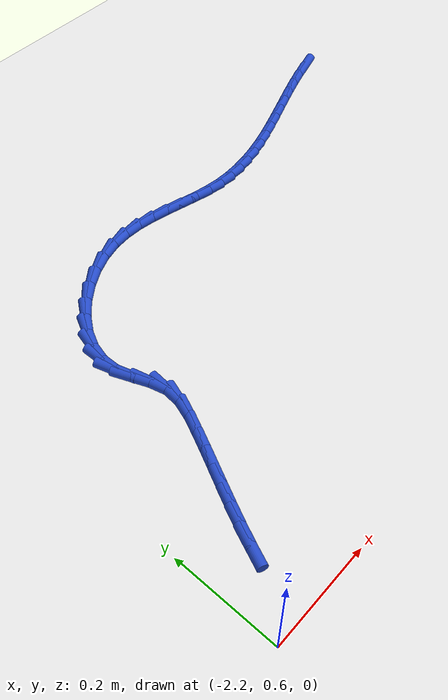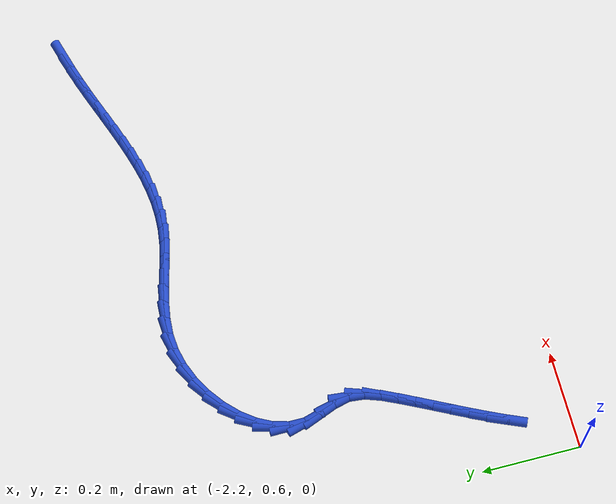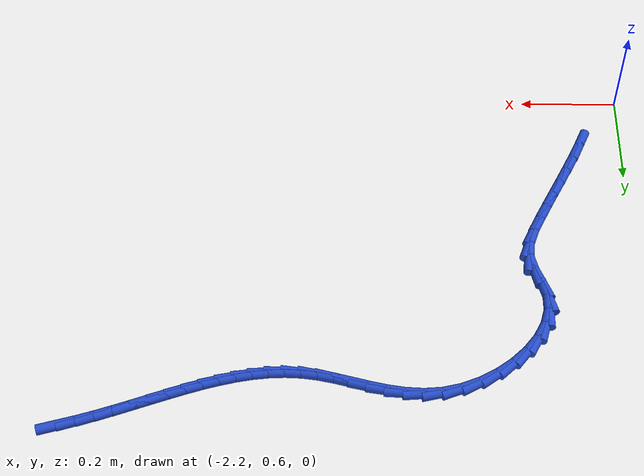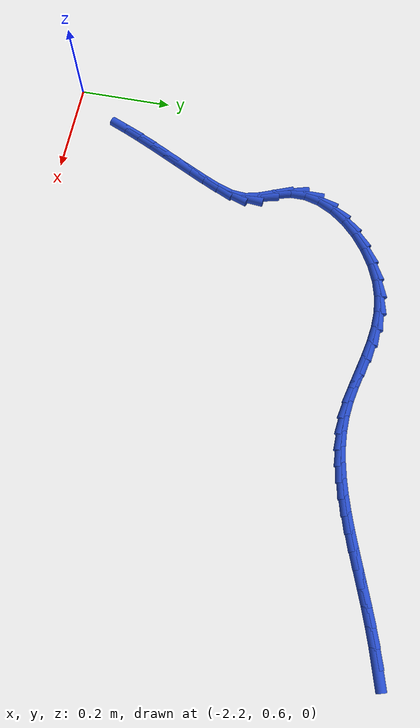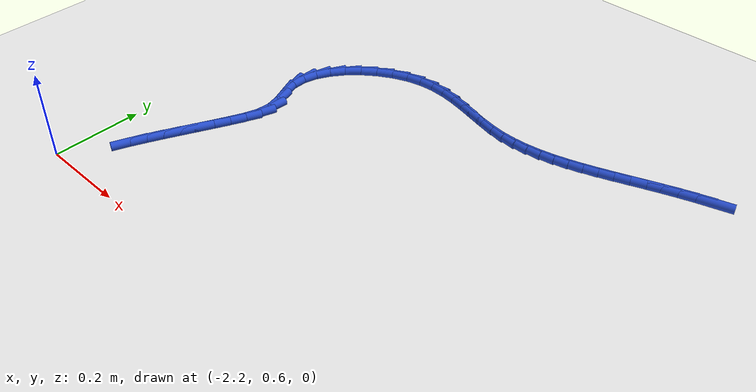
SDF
<sdf version="1.6">
 <world name="default">
  <model name="ground_plane">
   <static>1</static>
   <link name="link">
    <collision name="collision">
     <geometry><plane><normal>0 0 1</normal><size>100 100</size></plane></geometry>
     <surface><friction><ode><mu>100</mu><mu2>50</mu2></ode></friction></surface>
    </collision>
    <visual name="visual">
     <cast_shadows>0</cast_shadows>
     <geometry><plane><normal>0 0 1</normal><size>100 100</size></plane></geometry>
     <material>
      <script><uri>file://media/materials/scripts/gazebo.material</uri><name>Gazebo/WhiteGlow</name></script>
     </material>
    </visual>
   </link>
  </model>
  <model name="line">
   <link name="link_68">
    <pose>-1.1118902703118472 1.403961503204858 0.01 0 1.57 0.28492077158834617</pose>
    <collision name="collision">
     <geometry><cylinder><radius>0.01</radius><length>0.08</length></cylinder></geometry>
    </collision>
    <visual name="visual">
     <material>
      <script><name>Gazebo/Blue</name><uri>file://media/materials/scripts/gazebo.material</uri></script>
     </material>
     <geometry><cylinder><radius>0.01</radius><length>0.08</length></cylinder></geometry>
    </visual>
   </link>
   <link name="link_69">
    <pose>-1.145834962680922 1.394019456650552 0.01 0 1.57 0.3160324577656235</pose>
    <collision name="collision">
     <geometry><cylinder><radius>0.01</radius><length>0.08</length></cylinder></geometry>
    </collision>
    <visual name="visual">
     <material>
      <script><name>Gazebo/Blue</name><uri>file://media/materials/scripts/gazebo.material</uri></script>
     </material>
     <geometry><cylinder><radius>0.01</radius><length>0.08</length></cylinder></geometry>
    </visual>
   </link>
   <link name="link_70">
    <pose>-1.1790220390081132 1.3831675511592807 0.01 0 1.57 0.3391553161864147</pose>
    <collision name="collision">
     <geometry><cylinder><radius>0.01</radius><length>0.08</length></cylinder></geometry>
    </collision>
    <visual name="visual">
     <material>
      <script><name>Gazebo/Blue</name><uri>file://media/materials/scripts/gazebo.material</uri></script>
     </material>
     <geometry><cylinder><radius>0.01</radius><length>0.08</length></cylinder></geometry>
    </visual>
   </link>
   <link name="link_71">
    <pose>-1.2115365070456976 1.3716968765863278 0.01 0 1.57 0.3539779828538775</pose>
    <collision name="collision">
     <geometry><cylinder><radius>0.01</radius><length>0.08</length></cylinder></geometry>
    </collision>
    <visual name="visual">
     <material>
      <script><name>Gazebo/Blue</name><uri>file://media/materials/scripts/gazebo.material</uri></script>
     </material>
     <geometry><cylinder><radius>0.01</radius><length>0.08</length></cylinder></geometry>
    </visual>
   </link>
   <link name="link_72">
    <pose>-1.2434633745459542 1.359898522786976 0.01 0 1.57 0.360188315180611</pose>
    <collision name="collision">
     <geometry><cylinder><radius>0.01</radius><length>0.08</length></cylinder></geometry>
    </collision>
    <visual name="visual">
     <material>
      <script><name>Gazebo/Blue</name><uri>file://media/materials/scripts/gazebo.material</uri></script>
     </material>
     <geometry><cylinder><radius>0.01</radius><length>0.08</length></cylinder></geometry>
    </visual>
   </link>
   <link name="link_73">
    <pose>-1.2748876492611605 1.348063579616509 0.01 0 1.57 0.3574392197849283</pose>
    <collision name="collision">
     <geometry><cylinder><radius>0.01</radius><length>0.08</length></cylinder></geometry>
    </collision>
    <visual name="visual">
     <material>
      <script><name>Gazebo/Blue</name><uri>file://media/materials/scripts/gazebo.material</uri></script>
     </material>
     <geometry><cylinder><radius>0.01</radius><length>0.08</length></cylinder></geometry>
    </visual>
   </link>
   <link name="link_74">
    <pose>-1.3058943389435946 1.3364831369302088 0.01 0 1.57 0.3453296390945617</pose>
    <collision name="collision">
     <geometry><cylinder><radius>0.01</radius><length>0.08</length></cylinder></geometry>
    </collision>
    <visual name="visual">
     <material>
      <script><name>Gazebo/Blue</name><uri>file://media/materials/scripts/gazebo.material</uri></script>
     </material>
     <geometry><cylinder><radius>0.01</radius><length>0.08</length></cylinder></geometry>
    </visual>
   </link>
   <link name="link_75">
    <pose>-1.3365684513455347 1.3254482845833586 0.01 0 1.57 0.32340582705658283</pose>
    <collision name="collision">
     <geometry><cylinder><radius>0.01</radius><length>0.08</length></cylinder></geometry>
    </collision>
    <visual name="visual">
     <material>
      <script><name>Gazebo/Blue</name><uri>file://media/materials/scripts/gazebo.material</uri></script>
     </material>
     <geometry><cylinder><radius>0.01</radius><length>0.08</length></cylinder></geometry>
    </visual>
   </link>
   <link name="link_76">
    <pose>-1.3669949942192594 1.3152501124312428 0.01 0 1.57 0.29119024301775015</pose>
    <collision name="collision">
     <geometry><cylinder><radius>0.01</radius><length>0.08</length></cylinder></geometry>
    </collision>
    <visual name="visual">
     <material>
      <script><name>Gazebo/Blue</name><uri>file://media/materials/scripts/gazebo.material</uri></script>
     </material>
     <geometry><cylinder><radius>0.01</radius><length>0.08</length></cylinder></geometry>
    </visual>
   </link>
   <link name="link_77">
    <pose>-1.3972589753170461 1.3061797103291428 0.01 0 1.57 0.2482477379413241</pose>
    <collision name="collision">
     <geometry><cylinder><radius>0.01</radius><length>0.08</length></cylinder></geometry>
    </collision>
    <visual name="visual">
     <material>
      <script><name>Gazebo/Blue</name><uri>file://media/materials/scripts/gazebo.material</uri></script>
     </material>
     <geometry><cylinder><radius>0.01</radius><length>0.08</length></cylinder></geometry>
    </visual>
   </link>
   <link name="link_78">
    <pose>-1.4274454023911733 1.2985281681323426 0.01 0 1.57 0.19429879111260154</pose>
    <collision name="collision">
     <geometry><cylinder><radius>0.01</radius><length>0.08</length></cylinder></geometry>
    </collision>
    <visual name="visual">
     <material>
      <script><name>Gazebo/Blue</name><uri>file://media/materials/scripts/gazebo.material</uri></script>
     </material>
     <geometry><cylinder><radius>0.01</radius><length>0.08</length></cylinder></geometry>
    </visual>
   </link>
   <link name="link_79">
    <pose>-1.4576392831939189 1.2925865756961252 0.01 0 1.57 0.12938307136082536</pose>
    <collision name="collision">
     <geometry><cylinder><radius>0.01</radius><length>0.08</length></cylinder></geometry>
    </collision>
    <visual name="visual">
     <material>
      <script><name>Gazebo/Blue</name><uri>file://media/materials/scripts/gazebo.material</uri></script>
     </material>
     <geometry><cylinder><radius>0.01</radius><length>0.08</length></cylinder></geometry>
    </visual>
   </link>
   <link name="link_80">
    <pose>-1.487925625477561 1.2886460228757732 0.01 0 1.57 0.05405815077254932</pose>
    <collision name="collision">
     <geometry><cylinder><radius>0.01</radius><length>0.08</length></cylinder></geometry>
    </collision>
    <visual name="visual">
     <material>
      <script><name>Gazebo/Blue</name><uri>file://media/materials/scripts/gazebo.material</uri></script>
     </material>
     <geometry><cylinder><radius>0.01</radius><length>0.08</length></cylinder></geometry>
    </visual>
   </link>
   <link name="link_81">
    <pose>-1.5183894369943778 1.2869975995265701 0.01 0 1.57 -0.03041394758973531</pose>
    <collision name="collision">
     <geometry><cylinder><radius>0.01</radius><length>0.08</length></cylinder></geometry>
    </collision>
    <visual name="visual">
     <material>
      <script><name>Gazebo/Blue</name><uri>file://media/materials/scripts/gazebo.material</uri></script>
     </material>
     <geometry><cylinder><radius>0.01</radius><length>0.08</length></cylinder></geometry>
    </visual>
   </link>
   <link name="link_82">
    <pose>-1.5491157254966472 1.2879323955037985 0.01 0 1.57 -0.12166443649627862</pose>
    <collision name="collision">
     <geometry><cylinder><radius>0.01</radius><length>0.08</length></cylinder></geometry>
    </collision>
    <visual name="visual">
     <material>
      <script><name>Gazebo/Blue</name><uri>file://media/materials/scripts/gazebo.material</uri></script>
     </material>
     <geometry><cylinder><radius>0.01</radius><length>0.08</length></cylinder></geometry>
    </visual>
   </link>
   <link name="link_83">
    <pose>-1.5801891460672919 1.291731690250548 0.01 0 1.57 -0.20006381642580642</pose>
    <collision name="collision">
     <geometry><cylinder><radius>0.01</radius><length>0.08</length></cylinder></geometry>
    </collision>
    <visual name="visual">
     <material>
      <script><name>Gazebo/Blue</name><uri>file://media/materials/scripts/gazebo.material</uri></script>
     </material>
     <geometry><cylinder><radius>0.01</radius><length>0.08</length></cylinder></geometry>
    </visual>
   </link>
   <link name="link_84">
    <pose>-1.6116741994632517 1.298116118396443 0.01 0 1.57 -0.24067904531085976</pose>
    <collision name="collision">
     <geometry><cylinder><radius>0.01</radius><length>0.08</length></cylinder></geometry>
    </collision>
    <visual name="visual">
     <material>
      <script><name>Gazebo/Blue</name><uri>file://media/materials/scripts/gazebo.material</uri></script>
     </material>
     <geometry><cylinder><radius>0.01</radius><length>0.08</length></cylinder></geometry>
    </visual>
   </link>
   <link name="link_85">
    <pose>-1.6436047122618178 1.3059530327622997 0.01 0 1.57 -0.24449514926126942</pose>
    <collision name="collision">
     <geometry><cylinder><radius>0.01</radius><length>0.08</length></cylinder></geometry>
    </collision>
    <visual name="visual">
     <material>
      <script><name>Gazebo/Blue</name><uri>file://media/materials/scripts/gazebo.material</uri></script>
     </material>
     <geometry><cylinder><radius>0.01</radius><length>0.08</length></cylinder></geometry>
    </visual>
   </link>
   <link name="link_86">
    <pose>-1.6760119373523736 1.3140381923692708 0.01 0 1.57 -0.21329723469604714</pose>
    <collision name="collision">
     <geometry><cylinder><radius>0.01</radius><length>0.08</length></cylinder></geometry>
    </collision>
    <visual name="visual">
     <material>
      <script><name>Gazebo/Blue</name><uri>file://media/materials/scripts/gazebo.material</uri></script>
     </material>
     <geometry><cylinder><radius>0.01</radius><length>0.08</length></cylinder></geometry>
    </visual>
   </link>
   <link name="link_87">
    <pose>-1.7089271276243019 1.3211673562385096 0.01 0 1.57 -0.14745034444127952</pose>
    <collision name="collision">
     <geometry><cylinder><radius>0.01</radius><length>0.08</length></cylinder></geometry>
    </collision>
    <visual name="visual">
     <material>
      <script><name>Gazebo/Blue</name><uri>file://media/materials/scripts/gazebo.material</uri></script>
     </material>
     <geometry><cylinder><radius>0.01</radius><length>0.08</length></cylinder></geometry>
    </visual>
   </link>
   <link name="link_88">
    <pose>-1.7423815359669854 1.3261362833911685 0.01 0 1.57 -0.04712027934115121</pose>
    <collision name="collision">
     <geometry><cylinder><radius>0.01</radius><length>0.08</length></cylinder></geometry>
    </collision>
    <visual name="visual">
     <material>
      <script><name>Gazebo/Blue</name><uri>file://media/materials/scripts/gazebo.material</uri></script>
     </material>
     <geometry><cylinder><radius>0.01</radius><length>0.08</length></cylinder></geometry>
    </visual>
   </link>
   <link name="link_89">
    <pose>-1.7764064152698085 1.3277407328484012 0.01 0 1.57 0.0853984913308995</pose>
    <collision name="collision">
     <geometry><cylinder><radius>0.01</radius><length>0.08</length></cylinder></geometry>
    </collision>
    <visual name="visual">
     <material>
      <script><name>Gazebo/Blue</name><uri>file://media/materials/scripts/gazebo.material</uri></script>
     </material>
     <geometry><cylinder><radius>0.01</radius><length>0.08</length></cylinder></geometry>
    </visual>
   </link>
   <link name="link_90">
    <pose>-1.8110330184221537 1.3247764636313597 0.01 0 1.57 0.240658796452488</pose>
    <collision name="collision">
     <geometry><cylinder><radius>0.01</radius><length>0.08</length></cylinder></geometry>
    </collision>
    <visual name="visual">
     <material>
      <script><name>Gazebo/Blue</name><uri>file://media/materials/scripts/gazebo.material</uri></script>
     </material>
     <geometry><cylinder><radius>0.01</radius><length>0.08</length></cylinder></geometry>
    </visual>
   </link>
   <link name="link_91">
    <pose>-1.8462298797028256 1.3161386236423804 0.01 0 1.57 0.3871668092276538</pose>
    <collision name="collision">
     <geometry><cylinder><radius>0.01</radius><length>0.08</length></cylinder></geometry>
    </collision>
    <visual name="visual">
     <material>
      <script><name>Gazebo/Blue</name><uri>file://media/materials/scripts/gazebo.material</uri></script>
     </material>
     <geometry><cylinder><radius>0.01</radius><length>0.08</length></cylinder></geometry>
    </visual>
   </link>
   <link name="link_92">
    <pose>-1.8812474271824393 1.301860328795884 0.01 0 1.57 0.5178496028419197</pose>
    <collision name="collision">
     <geometry><cylinder><radius>0.01</radius><length>0.08</length></cylinder></geometry>
    </collision>
    <visual name="visual">
     <material>
      <script><name>Gazebo/Blue</name><uri>file://media/materials/scripts/gazebo.material</uri></script>
     </material>
     <geometry><cylinder><radius>0.01</radius><length>0.08</length></cylinder></geometry>
    </visual>
   </link>
   <link name="link_93">
    <pose>-1.9148779638022297 1.2827006763957132 0.01 0 1.57 0.6434775752650339</pose>
    <collision name="collision">
     <geometry><cylinder><radius>0.01</radius><length>0.08</length></cylinder></geometry>
    </collision>
    <visual name="visual">
     <material>
      <script><name>Gazebo/Blue</name><uri>file://media/materials/scripts/gazebo.material</uri></script>
     </material>
     <geometry><cylinder><radius>0.01</radius><length>0.08</length></cylinder></geometry>
    </visual>
   </link>
   <link name="link_94">
    <pose>-1.9459063860005008 1.2594305006772637 0.01 0 1.57 0.7742256912791825</pose>
    <collision name="collision">
     <geometry><cylinder><radius>0.01</radius><length>0.08</length></cylinder></geometry>
    </collision>
    <visual name="visual">
     <material>
      <script><name>Gazebo/Blue</name><uri>file://media/materials/scripts/gazebo.material</uri></script>
     </material>
     <geometry><cylinder><radius>0.01</radius><length>0.08</length></cylinder></geometry>
    </visual>
   </link>
   <link name="link_95">
    <pose>-1.973117590215557 1.2328206358759335 0.01 0 1.57 0.9208594983471085</pose>
    <collision name="collision">
     <geometry><cylinder><radius>0.01</radius><length>0.08</length></cylinder></geometry>
    </collision>
    <visual name="visual">
     <material>
      <script><name>Gazebo/Blue</name><uri>file://media/materials/scripts/gazebo.material</uri></script>
     </material>
     <geometry><cylinder><radius>0.01</radius><length>0.08</length></cylinder></geometry>
    </visual>
   </link>
   <link name="link_96">
    <pose>-1.9952964728857023 1.2036419162271188 0.01 0 1.57 1.0957712082285964</pose>
    <collision name="collision">
     <geometry><cylinder><radius>0.01</radius><length>0.08</length></cylinder></geometry>
    </collision>
    <visual name="visual">
     <material>
      <script><name>Gazebo/Blue</name><uri>file://media/materials/scripts/gazebo.material</uri></script>
     </material>
     <geometry><cylinder><radius>0.01</radius><length>0.08</length></cylinder></geometry>
    </visual>
   </link>
   <link name="link_97">
    <pose>-2.011227930449242 1.1726651759662166 0.01 0 1.57 1.3121042401692884</pose>
    <collision name="collision">
     <geometry><cylinder><radius>0.01</radius><length>0.08</length></cylinder></geometry>
    </collision>
    <visual name="visual">
     <material>
      <script><name>Gazebo/Blue</name><uri>file://media/materials/scripts/gazebo.material</uri></script>
     </material>
     <geometry><cylinder><radius>0.01</radius><length>0.08</length></cylinder></geometry>
    </visual>
   </link>
   <link name="link_98">
    <pose>-2.01969685934448 1.140661249328624 0.01 0 1.57 -1.5643270577389643</pose>
    <collision name="collision">
     <geometry><cylinder><radius>0.01</radius><length>0.08</length></cylinder></geometry>
    </collision>
    <visual name="visual">
     <material>
      <script><name>Gazebo/Blue</name><uri>file://media/materials/scripts/gazebo.material</uri></script>
     </material>
     <geometry><cylinder><radius>0.01</radius><length>0.08</length></cylinder></geometry>
    </visual>
   </link>
   <link name="link_99">
    <pose>-2.01948815600972 1.1084009705497369 0.01 0 1.57 -1.2876761706775792</pose>
    <collision name="collision">
     <geometry><cylinder><radius>0.01</radius><length>0.08</length></cylinder></geometry>
    </collision>
    <visual name="visual">
     <material>
      <script><name>Gazebo/Blue</name><uri>file://media/materials/scripts/gazebo.material</uri></script>
     </material>
     <geometry><cylinder><radius>0.01</radius><length>0.08</length></cylinder></geometry>
    </visual>
   </link>
   <link name="link_100">
    <pose>-2.0102221605240818 1.0765520050248378 0.01 0 1.57 -1.1882393277485575</pose>
    <collision name="collision">
     <geometry><cylinder><radius>0.01</radius><length>0.08</length></cylinder></geometry>
    </collision>
    <visual name="visual">
     <material>
      <script><name>Gazebo/Blue</name><uri>file://media/materials/scripts/gazebo.material</uri></script>
     </material>
     <geometry><cylinder><radius>0.01</radius><length>0.08</length></cylinder></geometry>
    </visual>
   </link>
   <link name="link_101">
    <pose>-1.9975416574290348 1.0450383071680152 0.01 0 1.57 -1.3283106986850373</pose>
    <collision name="collision">
     <geometry><cylinder><radius>0.01</radius><length>0.08</length></cylinder></geometry>
    </collision>
    <visual name="visual">
     <material>
      <script><name>Gazebo/Blue</name><uri>file://media/materials/scripts/gazebo.material</uri></script>
     </material>
     <geometry><cylinder><radius>0.01</radius><length>0.08</length></cylinder></geometry>
    </visual>
   </link>
   <link name="link_102">
    <pose>-1.9897301098258722 1.01345771551749 0.01 0 1.57 1.4799025139721484</pose>
    <collision name="collision">
     <geometry><cylinder><radius>0.01</radius><length>0.08</length></cylinder></geometry>
    </collision>
    <visual name="visual">
     <material>
      <script><name>Gazebo/Blue</name><uri>file://media/materials/scripts/gazebo.material</uri></script>
     </material>
     <geometry><cylinder><radius>0.01</radius><length>0.08</length></cylinder></geometry>
    </visual>
   </link>
   <link name="link_103">
    <pose>-1.9926409861255556 0.9815209362914299 0.01 0 1.57 1.240195005903558</pose>
    <collision name="collision">
     <geometry><cylinder><radius>0.01</radius><length>0.08</length></cylinder></geometry>
    </collision>
    <visual name="visual">
     <material>
      <script><name>Gazebo/Blue</name><uri>file://media/materials/scripts/gazebo.material</uri></script>
     </material>
     <geometry><cylinder><radius>0.01</radius><length>0.08</length></cylinder></geometry>
    </visual>
   </link>
   <link name="link_104">
    <pose>-2.003687544231734 0.9493337024227834 0.01 0 1.57 1.1406327245071728</pose>
    <collision name="collision">
     <geometry><cylinder><radius>0.01</radius><length>0.08</length></cylinder></geometry>
    </collision>
    <visual name="visual">
     <material>
      <script><name>Gazebo/Blue</name><uri>file://media/materials/scripts/gazebo.material</uri></script>
     </material>
     <geometry><cylinder><radius>0.01</radius><length>0.08</length></cylinder></geometry>
    </visual>
   </link>
   <link name="link_105">
    <pose>-2.0184834375739076 0.9170859278600055 0.01 0 1.57 1.1180852872813716</pose>
    <collision name="collision">
     <geometry><cylinder><radius>0.01</radius><length>0.08</length></cylinder></geometry>
    </collision>
    <visual name="visual">
     <material>
      <script><name>Gazebo/Blue</name><uri>file://media/materials/scripts/gazebo.material</uri></script>
     </material>
     <geometry><cylinder><radius>0.01</radius><length>0.08</length></cylinder></geometry>
    </visual>
   </link>
   <link name="link_106">
    <pose>-2.0341414988511515 0.8848943950570576 0.01 0 1.57 1.108263560239242</pose>
    <collision name="collision">
     <geometry><cylinder><radius>0.01</radius><length>0.08</length></cylinder></geometry>
    </collision>
    <visual name="visual">
     <material>
      <script><name>Gazebo/Blue</name><uri>file://media/materials/scripts/gazebo.material</uri></script>
     </material>
     <geometry><cylinder><radius>0.01</radius><length>0.08</length></cylinder></geometry>
    </visual>
   </link>
   <link name="link_107">
    <pose>-2.050164282670978 0.8527593133947972 0.01 0 1.57 1.1056758337423507</pose>
    <collision name="collision">
     <geometry><cylinder><radius>0.01</radius><length>0.08</length></cylinder></geometry>
    </collision>
    <visual name="visual">
     <material>
      <script><name>Gazebo/Blue</name><uri>file://media/materials/scripts/gazebo.material</uri></script>
     </material>
     <geometry><cylinder><radius>0.01</radius><length>0.08</length></cylinder></geometry>
    </visual>
   </link>
   <link name="link_108">
    <pose>-2.06626782260153 0.8206704785325548 0.01 0 1.57 1.110300139176071</pose>
    <collision name="collision">
     <geometry><cylinder><radius>0.01</radius><length>0.08</length></cylinder></geometry>
    </collision>
    <visual name="visual">
     <material>
      <script><name>Gazebo/Blue</name><uri>file://media/materials/scripts/gazebo.material</uri></script>
     </material>
     <geometry><cylinder><radius>0.01</radius><length>0.08</length></cylinder></geometry>
    </visual>
   </link>
   <link name="link_109">
    <pose>-2.082168152210949 0.7886176861296598 0.01 0 1.57 1.1222563259423115</pose>
    <collision name="collision">
     <geometry><cylinder><radius>0.01</radius><length>0.08</length></cylinder></geometry>
    </collision>
    <visual name="visual">
     <material>
      <script><name>Gazebo/Blue</name><uri>file://media/materials/scripts/gazebo.material</uri></script>
     </material>
     <geometry><cylinder><radius>0.01</radius><length>0.08</length></cylinder></geometry>
    </visual>
   </link>
   <link name="link_110">
    <pose>-2.097581305067378 0.7565907318454416 0.01 0 1.57 1.1418048076874483</pose>
    <collision name="collision">
     <geometry><cylinder><radius>0.01</radius><length>0.08</length></cylinder></geometry>
    </collision>
    <visual name="visual">
     <material>
      <script><name>Gazebo/Blue</name><uri>file://media/materials/scripts/gazebo.material</uri></script>
     </material>
     <geometry><cylinder><radius>0.01</radius><length>0.08</length></cylinder></geometry>
    </visual>
   </link>
   <link name="link_111">
    <pose>-2.1122233147389577 0.7245794113392308 0.01 0 1.57 1.1693386892766775</pose>
    <collision name="collision">
     <geometry><cylinder><radius>0.01</radius><length>0.08</length></cylinder></geometry>
    </collision>
    <visual name="visual">
     <material>
      <script><name>Gazebo/Blue</name><uri>file://media/materials/scripts/gazebo.material</uri></script>
     </material>
     <geometry><cylinder><radius>0.01</radius><length>0.08</length></cylinder></geometry>
    </visual>
   </link>
  </model>
 </world>
</sdf>
